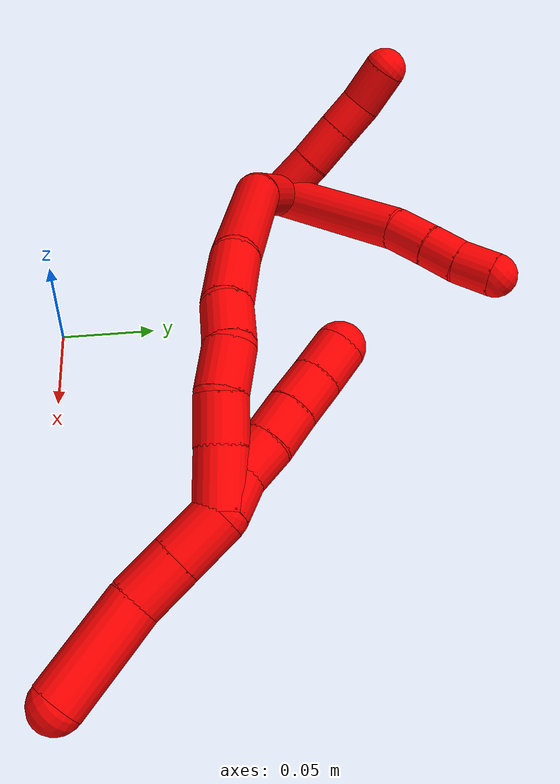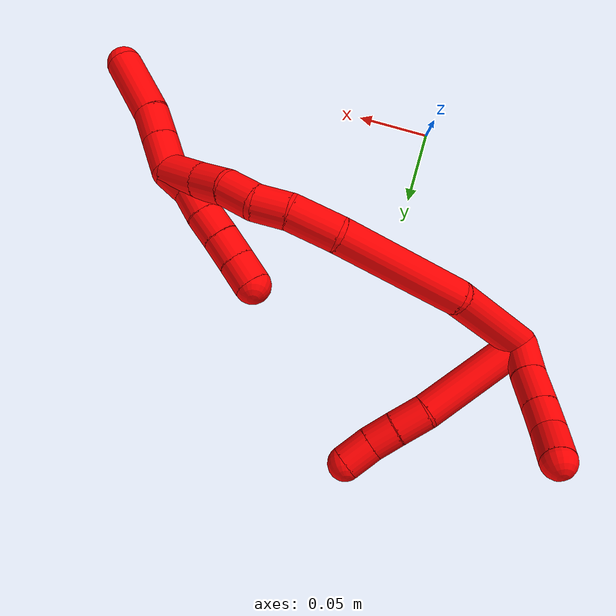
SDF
<sdf version="1.7">
 <world name="default">
  <model name="2">
   <static>0</static>
   <link name="2">
    <collision name="collision-cylinder-e_1_2_8">
     <pose>0.035642 0.010041 0.019271 -0.480354 1.0233 -0.273328</pose>
     <geometry><cylinder><radius>0.0125</radius><length>0.083488</length></cylinder></geometry>
     <surface>
      <friction><ode><mu>1.16</mu><mu2>1.16</mu2><slip1>0</slip1><slip2>0</slip2></ode></friction>
      <contact><ode><kp>1e+06</kp><kd>1</kd><max_vel>0</max_vel><min_depth>0.001</min_depth></ode></contact>
     </surface>
    </collision>
    <visual name="visual-cylinder-e_1_2_8">
     <pose>0.035642 0.010041 0.019271 -0.480354 1.0233 -0.273328</pose>
     <geometry><cylinder><radius>0.0125</radius><length>0.083488</length></cylinder></geometry>
     <material><ambient>1 0 0 1</ambient></material>
    </visual>
    <collision name="collision-cylinder-e_2_8_9">
     <pose>0.082021 0.023844 0.042297 -0.786149 1.11104 -0.503837</pose>
     <geometry><cylinder><radius>0.0125</radius><length>0.02396</length></cylinder></geometry>
     <surface>
      <friction><ode><mu>1.16</mu><mu2>1.16</mu2><slip1>0</slip1><slip2>0</slip2></ode></friction>
      <contact><ode><kp>1e+06</kp><kd>1</kd><max_vel>0</max_vel><min_depth>0.001</min_depth></ode></contact>
     </surface>
    </collision>
    <visual name="visual-cylinder-e_2_8_9">
     <pose>0.082021 0.023844 0.042297 -0.786149 1.11104 -0.503837</pose>
     <geometry><cylinder><radius>0.0125</radius><length>0.02396</length></cylinder></geometry>
     <material><ambient>1 0 0 1</ambient></material>
    </visual>
    <collision name="collision-cylinder-e_3_9_10">
     <pose>0.101707 0.031346 0.049051 -0.89509 1.0791 -0.559813</pose>
     <geometry><cylinder><radius>0.0125</radius><length>0.020305</length></cylinder></geometry>
     <surface>
      <friction><ode><mu>1.16</mu><mu2>1.16</mu2><slip1>0</slip1><slip2>0</slip2></ode></friction>
      <contact><ode><kp>1e+06</kp><kd>1</kd><max_vel>0</max_vel><min_depth>0.001</min_depth></ode></contact>
     </surface>
    </collision>
    <visual name="visual-cylinder-e_3_9_10">
     <pose>0.101707 0.031346 0.049051 -0.89509 1.0791 -0.559813</pose>
     <geometry><cylinder><radius>0.0125</radius><length>0.020305</length></cylinder></geometry>
     <material><ambient>1 0 0 1</ambient></material>
    </visual>
    <collision name="collision-cylinder-e_4_10_6">
     <pose>0.119993 0.038898 0.056742 -0.682166 0.996107 -0.381344</pose>
     <geometry><cylinder><radius>0.0125</radius><length>0.022247</length></cylinder></geometry>
     <surface>
      <friction><ode><mu>1.16</mu><mu2>1.16</mu2><slip1>0</slip1><slip2>0</slip2></ode></friction>
      <contact><ode><kp>1e+06</kp><kd>1</kd><max_vel>0</max_vel><min_depth>0.001</min_depth></ode></contact>
     </surface>
    </collision>
    <visual name="visual-cylinder-e_4_10_6">
     <pose>0.119993 0.038898 0.056742 -0.682166 0.996107 -0.381344</pose>
     <geometry><cylinder><radius>0.0125</radius><length>0.022247</length></cylinder></geometry>
     <material><ambient>1 0 0 1</ambient></material>
    </visual>
    <collision name="collision-cylinder-e_1_2_11">
     <pose>-9.8e-05 -7.7e-05 0.014039 0.005454 -0.00696 -1.9e-05</pose>
     <geometry><cylinder><radius>0.0125</radius><length>0.02808</length></cylinder></geometry>
     <surface>
      <friction><ode><mu>1.16</mu><mu2>1.16</mu2><slip1>0</slip1><slip2>0</slip2></ode></friction>
      <contact><ode><kp>1e+06</kp><kd>1</kd><max_vel>0</max_vel><min_depth>0.001</min_depth></ode></contact>
     </surface>
    </collision>
    <visual name="visual-cylinder-e_1_2_11">
     <pose>-9.8e-05 -7.7e-05 0.014039 0.005454 -0.00696 -1.9e-05</pose>
     <geometry><cylinder><radius>0.0125</radius><length>0.02808</length></cylinder></geometry>
     <material><ambient>1 0 0 1</ambient></material>
    </visual>
    <collision name="collision-cylinder-e_2_11_12">
     <pose>-0.001152 -0.000393 0.040941 0.018641 -0.074192 -0.000692</pose>
     <geometry><cylinder><radius>0.0125</radius><length>0.025799</length></cylinder></geometry>
     <surface>
      <friction><ode><mu>1.16</mu><mu2>1.16</mu2><slip1>0</slip1><slip2>0</slip2></ode></friction>
      <contact><ode><kp>1e+06</kp><kd>1</kd><max_vel>0</max_vel><min_depth>0.001</min_depth></ode></contact>
     </surface>
    </collision>
    <visual name="visual-cylinder-e_2_11_12">
     <pose>-0.001152 -0.000393 0.040941 0.018641 -0.074192 -0.000692</pose>
     <geometry><cylinder><radius>0.0125</radius><length>0.025799</length></cylinder></geometry>
     <material><ambient>1 0 0 1</ambient></material>
    </visual>
    <collision name="collision-cylinder-e_3_12_13">
     <pose>-0.00271 -0.000815 0.064105 0.017684 -0.058345 -0.000516</pose>
     <geometry><cylinder><radius>0.0125</radius><length>0.020644</length></cylinder></geometry>
     <surface>
      <friction><ode><mu>1.16</mu><mu2>1.16</mu2><slip1>0</slip1><slip2>0</slip2></ode></friction>
      <contact><ode><kp>1e+06</kp><kd>1</kd><max_vel>0</max_vel><min_depth>0.001</min_depth></ode></contact>
     </surface>
    </collision>
    <visual name="visual-cylinder-e_3_12_13">
     <pose>-0.00271 -0.000815 0.064105 0.017684 -0.058345 -0.000516</pose>
     <geometry><cylinder><radius>0.0125</radius><length>0.020644</length></cylinder></geometry>
     <material><ambient>1 0 0 1</ambient></material>
    </visual>
    <collision name="collision-cylinder-e_4_13_5">
     <pose>-0.002767 -0.004084 0.086755 0.244967 0.042765 0.005265</pose>
     <geometry><cylinder><radius>0.0125</radius><length>0.025478</length></cylinder></geometry>
     <surface>
      <friction><ode><mu>1.16</mu><mu2>1.16</mu2><slip1>0</slip1><slip2>0</slip2></ode></friction>
      <contact><ode><kp>1e+06</kp><kd>1</kd><max_vel>0</max_vel><min_depth>0.001</min_depth></ode></contact>
     </surface>
    </collision>
    <visual name="visual-cylinder-e_4_13_5">
     <pose>-0.002767 -0.004084 0.086755 0.244967 0.042765 0.005265</pose>
     <geometry><cylinder><radius>0.0125</radius><length>0.025478</length></cylinder></geometry>
     <material><ambient>1 0 0 1</ambient></material>
    </visual>
    <collision name="collision-cylinder-e_1_2_14">
     <pose>0.024621 -0.02771 0.000413 1.5559 0.726378 0.716536</pose>
     <geometry><cylinder><radius>0.0125</radius><length>0.07414</length></cylinder></geometry>
     <surface>
      <friction><ode><mu>1.16</mu><mu2>1.16</mu2><slip1>0</slip1><slip2>0</slip2></ode></friction>
      <contact><ode><kp>1e+06</kp><kd>1</kd><max_vel>0</max_vel><min_depth>0.001</min_depth></ode></contact>
     </surface>
    </collision>
    <visual name="visual-cylinder-e_1_2_14">
     <pose>0.024621 -0.02771 0.000413 1.5559 0.726378 0.716536</pose>
     <geometry><cylinder><radius>0.0125</radius><length>0.07414</length></cylinder></geometry>
     <material><ambient>1 0 0 1</ambient></material>
    </visual>
    <collision name="collision-cylinder-e_2_14_15">
     <pose>0.087942 -0.079675 -0.007544 1.90308 0.985331 1.29099</pose>
     <geometry><cylinder><radius>0.0125</radius><length>0.092869</length></cylinder></geometry>
     <surface>
      <friction><ode><mu>1.16</mu><mu2>1.16</mu2><slip1>0</slip1><slip2>0</slip2></ode></friction>
      <contact><ode><kp>1e+06</kp><kd>1</kd><max_vel>0</max_vel><min_depth>0.001</min_depth></ode></contact>
     </surface>
    </collision>
    <visual name="visual-cylinder-e_2_14_15">
     <pose>0.087942 -0.079675 -0.007544 1.90308 0.985331 1.29099</pose>
     <geometry><cylinder><radius>0.0125</radius><length>0.092869</length></cylinder></geometry>
     <material><ambient>1 0 0 1</ambient></material>
    </visual>
    <collision name="collision-cylinder-e_3_15_16">
     <pose>0.14162 -0.109233 -0.022196 2.44055 1.06883 2.03486</pose>
     <geometry><cylinder><radius>0.0125</radius><length>0.034167</length></cylinder></geometry>
     <surface>
      <friction><ode><mu>1.16</mu><mu2>1.16</mu2><slip1>0</slip1><slip2>0</slip2></ode></friction>
      <contact><ode><kp>1e+06</kp><kd>1</kd><max_vel>0</max_vel><min_depth>0.001</min_depth></ode></contact>
     </surface>
    </collision>
    <visual name="visual-cylinder-e_3_15_16">
     <pose>0.14162 -0.109233 -0.022196 2.44055 1.06883 2.03486</pose>
     <geometry><cylinder><radius>0.0125</radius><length>0.034167</length></cylinder></geometry>
     <material><ambient>1 0 0 1</ambient></material>
    </visual>
    <collision name="collision-cylinder-e_4_16_17">
     <pose>0.16748 -0.11561 -0.032551 2.88357 1.20139 2.76733</pose>
     <geometry><cylinder><radius>0.0125</radius><length>0.023343</length></cylinder></geometry>
     <surface>
      <friction><ode><mu>1.16</mu><mu2>1.16</mu2><slip1>0</slip1><slip2>0</slip2></ode></friction>
      <contact><ode><kp>1e+06</kp><kd>1</kd><max_vel>0</max_vel><min_depth>0.001</min_depth></ode></contact>
     </surface>
    </collision>
    <visual name="visual-cylinder-e_4_16_17">
     <pose>0.16748 -0.11561 -0.032551 2.88357 1.20139 2.76733</pose>
     <geometry><cylinder><radius>0.0125</radius><length>0.023343</length></cylinder></geometry>
     <material><ambient>1 0 0 1</ambient></material>
    </visual>
    <collision name="collision-cylinder-e_5_17_18">
     <pose>0.187487 -0.117119 -0.04409 3.08353 0.884266 3.01906</pose>
     <geometry><cylinder><radius>0.0125</radius><length>0.023589</length></cylinder></geometry>
     <surface>
      <friction><ode><mu>1.16</mu><mu2>1.16</mu2><slip1>0</slip1><slip2>0</slip2></ode></friction>
      <contact><ode><kp>1e+06</kp><kd>1</kd><max_vel>0</max_vel><min_depth>0.001</min_depth></ode></contact>
     </surface>
    </collision>
    <visual name="visual-cylinder-e_5_17_18">
     <pose>0.187487 -0.117119 -0.04409 3.08353 0.884266 3.01906</pose>
     <geometry><cylinder><radius>0.0125</radius><length>0.023589</length></cylinder></geometry>
     <material><ambient>1 0 0 1</ambient></material>
    </visual>
    <collision name="collision-cylinder-e_6_18_19">
     <pose>0.20551 -0.114914 -0.058699 -2.78776 0.862884 -2.40075</pose>
     <geometry><cylinder><radius>0.0125</radius><length>0.02343</length></cylinder></geometry>
     <surface>
      <friction><ode><mu>1.16</mu><mu2>1.16</mu2><slip1>0</slip1><slip2>0</slip2></ode></friction>
      <contact><ode><kp>1e+06</kp><kd>1</kd><max_vel>0</max_vel><min_depth>0.001</min_depth></ode></contact>
     </surface>
    </collision>
    <visual name="visual-cylinder-e_6_18_19">
     <pose>0.20551 -0.114914 -0.058699 -2.78776 0.862884 -2.40075</pose>
     <geometry><cylinder><radius>0.0125</radius><length>0.02343</length></cylinder></geometry>
     <material><ambient>1 0 0 1</ambient></material>
    </visual>
    <collision name="collision-cylinder-e_7_19_1">
     <pose>0.225586 -0.110061 -0.074371 -2.88761 0.903346 -2.62689</pose>
     <geometry><cylinder><radius>0.0125</radius><length>0.028461</length></cylinder></geometry>
     <surface>
      <friction><ode><mu>1.16</mu><mu2>1.16</mu2><slip1>0</slip1><slip2>0</slip2></ode></friction>
      <contact><ode><kp>1e+06</kp><kd>1</kd><max_vel>0</max_vel><min_depth>0.001</min_depth></ode></contact>
     </surface>
    </collision>
    <visual name="visual-cylinder-e_7_19_1">
     <pose>0.225586 -0.110061 -0.074371 -2.88761 0.903346 -2.62689</pose>
     <geometry><cylinder><radius>0.0125</radius><length>0.028461</length></cylinder></geometry>
     <material><ambient>1 0 0 1</ambient></material>
    </visual>
    <collision name="collision-cylinder-e_1_1_20">
     <pose>0.229862 -0.104548 -0.076456 -0.473454 -0.761652 0.192582</pose>
     <geometry><cylinder><radius>0.0125</radius><length>0.02</length></cylinder></geometry>
     <surface>
      <friction><ode><mu>1.16</mu><mu2>1.16</mu2><slip1>0</slip1><slip2>0</slip2></ode></friction>
      <contact><ode><kp>1e+06</kp><kd>1</kd><max_vel>0</max_vel><min_depth>0.001</min_depth></ode></contact>
     </surface>
    </collision>
    <visual name="visual-cylinder-e_1_1_20">
     <pose>0.229862 -0.104548 -0.076456 -0.473454 -0.761652 0.192582</pose>
     <geometry><cylinder><radius>0.0125</radius><length>0.02</length></cylinder></geometry>
     <material><ambient>1 0 0 1</ambient></material>
    </visual>
    <collision name="collision-cylinder-e_2_20_21">
     <pose>0.218628 -0.097035 -0.062047 -0.486429 -0.448081 0.112959</pose>
     <geometry><cylinder><radius>0.0125</radius><length>0.02</length></cylinder></geometry>
     <surface>
      <friction><ode><mu>1.16</mu><mu2>1.16</mu2><slip1>0</slip1><slip2>0</slip2></ode></friction>
      <contact><ode><kp>1e+06</kp><kd>1</kd><max_vel>0</max_vel><min_depth>0.001</min_depth></ode></contact>
     </surface>
    </collision>
    <visual name="visual-cylinder-e_2_20_21">
     <pose>0.218628 -0.097035 -0.062047 -0.486429 -0.448081 0.112959</pose>
     <geometry><cylinder><radius>0.0125</radius><length>0.02</length></cylinder></geometry>
     <material><ambient>1 0 0 1</ambient></material>
    </visual>
    <collision name="collision-cylinder-e_3_21_22">
     <pose>0.209046 -0.089013 -0.046469 -0.46396 -0.552749 0.133807</pose>
     <geometry><cylinder><radius>0.0125</radius><length>0.02</length></cylinder></geometry>
     <surface>
      <friction><ode><mu>1.16</mu><mu2>1.16</mu2><slip1>0</slip1><slip2>0</slip2></ode></friction>
      <contact><ode><kp>1e+06</kp><kd>1</kd><max_vel>0</max_vel><min_depth>0.001</min_depth></ode></contact>
     </surface>
    </collision>
    <visual name="visual-cylinder-e_3_21_22">
     <pose>0.209046 -0.089013 -0.046469 -0.46396 -0.552749 0.133807</pose>
     <geometry><cylinder><radius>0.0125</radius><length>0.02</length></cylinder></geometry>
     <material><ambient>1 0 0 1</ambient></material>
    </visual>
    <collision name="collision-cylinder-e_4_22_23">
     <pose>0.198771 -0.081162 -0.031215 -0.486488 -0.526376 0.133528</pose>
     <geometry><cylinder><radius>0.0125</radius><length>0.02</length></cylinder></geometry>
     <surface>
      <friction><ode><mu>1.16</mu><mu2>1.16</mu2><slip1>0</slip1><slip2>0</slip2></ode></friction>
      <contact><ode><kp>1e+06</kp><kd>1</kd><max_vel>0</max_vel><min_depth>0.001</min_depth></ode></contact>
     </surface>
    </collision>
    <visual name="visual-cylinder-e_4_22_23">
     <pose>0.198771 -0.081162 -0.031215 -0.486488 -0.526376 0.133528</pose>
     <geometry><cylinder><radius>0.0125</radius><length>0.02</length></cylinder></geometry>
     <material><ambient>1 0 0 1</ambient></material>
    </visual>
    <collision name="collision-cylinder-e_5_23_4">
     <pose>0.188822 -0.07353 -0.015644 -0.425214 -0.515003 0.113575</pose>
     <geometry><cylinder><radius>0.0125</radius><length>0.02</length></cylinder></geometry>
     <surface>
      <friction><ode><mu>1.16</mu><mu2>1.16</mu2><slip1>0</slip1><slip2>0</slip2></ode></friction>
      <contact><ode><kp>1e+06</kp><kd>1</kd><max_vel>0</max_vel><min_depth>0.001</min_depth></ode></contact>
     </surface>
    </collision>
    <visual name="visual-cylinder-e_5_23_4">
     <pose>0.188822 -0.07353 -0.015644 -0.425214 -0.515003 0.113575</pose>
     <geometry><cylinder><radius>0.0125</radius><length>0.02</length></cylinder></geometry>
     <material><ambient>1 0 0 1</ambient></material>
    </visual>
    <collision name="collision-cylinder-e_1_1_24">
     <pose>0.240242 -0.11172 -0.094847 2.82824 0.270147 1.42089</pose>
     <geometry><cylinder><radius>0.0125</radius><length>0.02607</length></cylinder></geometry>
     <surface>
      <friction><ode><mu>1.16</mu><mu2>1.16</mu2><slip1>0</slip1><slip2>0</slip2></ode></friction>
      <contact><ode><kp>1e+06</kp><kd>1</kd><max_vel>0</max_vel><min_depth>0.001</min_depth></ode></contact>
     </surface>
    </collision>
    <visual name="visual-cylinder-e_1_1_24">
     <pose>0.240242 -0.11172 -0.094847 2.82824 0.270147 1.42089</pose>
     <geometry><cylinder><radius>0.0125</radius><length>0.02607</length></cylinder></geometry>
     <material><ambient>1 0 0 1</ambient></material>
    </visual>
    <collision name="collision-cylinder-e_2_24_25">
     <pose>0.24697 -0.119233 -0.117856 2.82355 0.272153 1.41336</pose>
     <geometry><cylinder><radius>0.0125</radius><length>0.024173</length></cylinder></geometry>
     <surface>
      <friction><ode><mu>1.16</mu><mu2>1.16</mu2><slip1>0</slip1><slip2>0</slip2></ode></friction>
      <contact><ode><kp>1e+06</kp><kd>1</kd><max_vel>0</max_vel><min_depth>0.001</min_depth></ode></contact>
     </surface>
    </collision>
    <visual name="visual-cylinder-e_2_24_25">
     <pose>0.24697 -0.119233 -0.117856 2.82355 0.272153 1.41336</pose>
     <geometry><cylinder><radius>0.0125</radius><length>0.024173</length></cylinder></geometry>
     <material><ambient>1 0 0 1</ambient></material>
    </visual>
    <collision name="collision-cylinder-e_3_25_3">
     <pose>0.260541 -0.129564 -0.150538 2.84154 0.427843 1.92577</pose>
     <geometry><cylinder><radius>0.0125</radius><length>0.049757</length></cylinder></geometry>
     <surface>
      <friction><ode><mu>1.16</mu><mu2>1.16</mu2><slip1>0</slip1><slip2>0</slip2></ode></friction>
      <contact><ode><kp>1e+06</kp><kd>1</kd><max_vel>0</max_vel><min_depth>0.001</min_depth></ode></contact>
     </surface>
    </collision>
    <visual name="visual-cylinder-e_3_25_3">
     <pose>0.260541 -0.129564 -0.150538 2.84154 0.427843 1.92577</pose>
     <geometry><cylinder><radius>0.0125</radius><length>0.049757</length></cylinder></geometry>
     <material><ambient>1 0 0 1</ambient></material>
    </visual>
    <collision name="collision-sphere-3">
     <pose>0.270863 -0.136254 -0.172163 0 -0 0</pose>
     <geometry><sphere><radius>0.0125</radius></sphere></geometry>
     <surface>
      <friction><ode><mu>1.16</mu><mu2>1.16</mu2><slip1>0</slip1><slip2>0</slip2></ode></friction>
      <contact><ode><kp>1e+06</kp><kd>1</kd><max_vel>0</max_vel><min_depth>0.001</min_depth></ode></contact>
     </surface>
    </collision>
    <visual name="visual-sphere-3">
     <pose>0.270863 -0.136254 -0.172163 0 -0 0</pose>
     <geometry><sphere><radius>0.0125</radius></sphere></geometry>
     <material><ambient>1 0 0 1</ambient></material>
    </visual>
    <collision name="collision-sphere-25">
     <pose>0.250218 -0.122873 -0.128914 0 -0 0</pose>
     <geometry><sphere><radius>0.0125</radius></sphere></geometry>
     <surface>
      <friction><ode><mu>1.16</mu><mu2>1.16</mu2><slip1>0</slip1><slip2>0</slip2></ode></friction>
      <contact><ode><kp>1e+06</kp><kd>1</kd><max_vel>0</max_vel><min_depth>0.001</min_depth></ode></contact>
     </surface>
    </collision>
    <visual name="visual-sphere-25">
     <pose>0.250218 -0.122873 -0.128914 0 -0 0</pose>
     <geometry><sphere><radius>0.0125</radius></sphere></geometry>
     <material><ambient>1 0 0 1</ambient></material>
    </visual>
    <collision name="collision-sphere-24">
     <pose>0.243721 -0.115592 -0.106798 0 -0 0</pose>
     <geometry><sphere><radius>0.0125</radius></sphere></geometry>
     <surface>
      <friction><ode><mu>1.16</mu><mu2>1.16</mu2><slip1>0</slip1><slip2>0</slip2></ode></friction>
      <contact><ode><kp>1e+06</kp><kd>1</kd><max_vel>0</max_vel><min_depth>0.001</min_depth></ode></contact>
     </surface>
    </collision>
    <visual name="visual-sphere-24">
     <pose>0.243721 -0.115592 -0.106798 0 -0 0</pose>
     <geometry><sphere><radius>0.0125</radius></sphere></geometry>
     <material><ambient>1 0 0 1</ambient></material>
    </visual>
    <collision name="collision-sphere-4">
     <pose>0.183897 -0.06994 -0.007716 0 -0 0</pose>
     <geometry><sphere><radius>0.0125</radius></sphere></geometry>
     <surface>
      <friction><ode><mu>1.16</mu><mu2>1.16</mu2><slip1>0</slip1><slip2>0</slip2></ode></friction>
      <contact><ode><kp>1e+06</kp><kd>1</kd><max_vel>0</max_vel><min_depth>0.001</min_depth></ode></contact>
     </surface>
    </collision>
    <visual name="visual-sphere-4">
     <pose>0.183897 -0.06994 -0.007716 0 -0 0</pose>
     <geometry><sphere><radius>0.0125</radius></sphere></geometry>
     <material><ambient>1 0 0 1</ambient></material>
    </visual>
    <collision name="collision-sphere-23">
     <pose>0.193747 -0.07712 -0.023571 0 -0 0</pose>
     <geometry><sphere><radius>0.0125</radius></sphere></geometry>
     <surface>
      <friction><ode><mu>1.16</mu><mu2>1.16</mu2><slip1>0</slip1><slip2>0</slip2></ode></friction>
      <contact><ode><kp>1e+06</kp><kd>1</kd><max_vel>0</max_vel><min_depth>0.001</min_depth></ode></contact>
     </surface>
    </collision>
    <visual name="visual-sphere-23">
     <pose>0.193747 -0.07712 -0.023571 0 -0 0</pose>
     <geometry><sphere><radius>0.0125</radius></sphere></geometry>
     <material><ambient>1 0 0 1</ambient></material>
    </visual>
    <collision name="collision-sphere-22">
     <pose>0.203796 -0.085205 -0.038858 0 -0 0</pose>
     <geometry><sphere><radius>0.0125</radius></sphere></geometry>
     <surface>
      <friction><ode><mu>1.16</mu><mu2>1.16</mu2><slip1>0</slip1><slip2>0</slip2></ode></friction>
      <contact><ode><kp>1e+06</kp><kd>1</kd><max_vel>0</max_vel><min_depth>0.001</min_depth></ode></contact>
     </surface>
    </collision>
    <visual name="visual-sphere-22">
     <pose>0.203796 -0.085205 -0.038858 0 -0 0</pose>
     <geometry><sphere><radius>0.0125</radius></sphere></geometry>
     <material><ambient>1 0 0 1</ambient></material>
    </visual>
    <collision name="collision-sphere-21">
     <pose>0.214296 -0.092822 -0.05408 0 -0 0</pose>
     <geometry><sphere><radius>0.0125</radius></sphere></geometry>
     <surface>
      <friction><ode><mu>1.16</mu><mu2>1.16</mu2><slip1>0</slip1><slip2>0</slip2></ode></friction>
      <contact><ode><kp>1e+06</kp><kd>1</kd><max_vel>0</max_vel><min_depth>0.001</min_depth></ode></contact>
     </surface>
    </collision>
    <visual name="visual-sphere-21">
     <pose>0.214296 -0.092822 -0.05408 0 -0 0</pose>
     <geometry><sphere><radius>0.0125</radius></sphere></geometry>
     <material><ambient>1 0 0 1</ambient></material>
    </visual>
    <collision name="collision-sphere-20">
     <pose>0.222961 -0.101248 -0.070015 0 -0 0</pose>
     <geometry><sphere><radius>0.0125</radius></sphere></geometry>
     <surface>
      <friction><ode><mu>1.16</mu><mu2>1.16</mu2><slip1>0</slip1><slip2>0</slip2></ode></friction>
      <contact><ode><kp>1e+06</kp><kd>1</kd><max_vel>0</max_vel><min_depth>0.001</min_depth></ode></contact>
     </surface>
    </collision>
    <visual name="visual-sphere-20">
     <pose>0.222961 -0.101248 -0.070015 0 -0 0</pose>
     <geometry><sphere><radius>0.0125</radius></sphere></geometry>
     <material><ambient>1 0 0 1</ambient></material>
    </visual>
    <collision name="collision-sphere-11">
     <pose>-0.000195 -0.000153 0.028079 0 -0 0</pose>
     <geometry><sphere><radius>0.0125</radius></sphere></geometry>
     <surface>
      <friction><ode><mu>1.16</mu><mu2>1.16</mu2><slip1>0</slip1><slip2>0</slip2></ode></friction>
      <contact><ode><kp>1e+06</kp><kd>1</kd><max_vel>0</max_vel><min_depth>0.001</min_depth></ode></contact>
     </surface>
    </collision>
    <visual name="visual-sphere-11">
     <pose>-0.000195 -0.000153 0.028079 0 -0 0</pose>
     <geometry><sphere><radius>0.0125</radius></sphere></geometry>
     <material><ambient>1 0 0 1</ambient></material>
    </visual>
    <collision name="collision-sphere-6">
     <pose>0.12933 0.04271 0.061436 0 -0 0</pose>
     <geometry><sphere><radius>0.0125</radius></sphere></geometry>
     <surface>
      <friction><ode><mu>1.16</mu><mu2>1.16</mu2><slip1>0</slip1><slip2>0</slip2></ode></friction>
      <contact><ode><kp>1e+06</kp><kd>1</kd><max_vel>0</max_vel><min_depth>0.001</min_depth></ode></contact>
     </surface>
    </collision>
    <visual name="visual-sphere-6">
     <pose>0.12933 0.04271 0.061436 0 -0 0</pose>
     <geometry><sphere><radius>0.0125</radius></sphere></geometry>
     <material><ambient>1 0 0 1</ambient></material>
    </visual>
    <collision name="collision-sphere-10">
     <pose>0.110656 0.035086 0.052049 0 -0 0</pose>
     <geometry><sphere><radius>0.0125</radius></sphere></geometry>
     <surface>
      <friction><ode><mu>1.16</mu><mu2>1.16</mu2><slip1>0</slip1><slip2>0</slip2></ode></friction>
      <contact><ode><kp>1e+06</kp><kd>1</kd><max_vel>0</max_vel><min_depth>0.001</min_depth></ode></contact>
     </surface>
    </collision>
    <visual name="visual-sphere-10">
     <pose>0.110656 0.035086 0.052049 0 -0 0</pose>
     <geometry><sphere><radius>0.0125</radius></sphere></geometry>
     <material><ambient>1 0 0 1</ambient></material>
    </visual>
    <collision name="collision-sphere-9">
     <pose>0.092757 0.027606 0.046053 0 -0 0</pose>
     <geometry><sphere><radius>0.0125</radius></sphere></geometry>
     <surface>
      <friction><ode><mu>1.16</mu><mu2>1.16</mu2><slip1>0</slip1><slip2>0</slip2></ode></friction>
      <contact><ode><kp>1e+06</kp><kd>1</kd><max_vel>0</max_vel><min_depth>0.001</min_depth></ode></contact>
     </surface>
    </collision>
    <visual name="visual-sphere-9">
     <pose>0.092757 0.027606 0.046053 0 -0 0</pose>
     <geometry><sphere><radius>0.0125</radius></sphere></geometry>
     <material><ambient>1 0 0 1</ambient></material>
    </visual>
    <collision name="collision-sphere-2">
     <geometry><sphere><radius>0.0125</radius></sphere></geometry>
     <surface>
      <friction><ode><mu>1.16</mu><mu2>1.16</mu2><slip1>0</slip1><slip2>0</slip2></ode></friction>
      <contact><ode><kp>1e+06</kp><kd>1</kd><max_vel>0</max_vel><min_depth>0.001</min_depth></ode></contact>
     </surface>
    </collision>
    <visual name="visual-sphere-2">
     <geometry><sphere><radius>0.0125</radius></sphere></geometry>
     <material><ambient>1 0 0 1</ambient></material>
    </visual>
    <collision name="collision-sphere-19">
     <pose>0.21441 -0.112274 -0.065845 0 -0 0</pose>
     <geometry><sphere><radius>0.0125</radius></sphere></geometry>
     <surface>
      <friction><ode><mu>1.16</mu><mu2>1.16</mu2><slip1>0</slip1><slip2>0</slip2></ode></friction>
      <contact><ode><kp>1e+06</kp><kd>1</kd><max_vel>0</max_vel><min_depth>0.001</min_depth></ode></contact>
     </surface>
    </collision>
    <visual name="visual-sphere-19">
     <pose>0.21441 -0.112274 -0.065845 0 -0 0</pose>
     <geometry><sphere><radius>0.0125</radius></sphere></geometry>
     <material><ambient>1 0 0 1</ambient></material>
    </visual>
    <collision name="collision-sphere-8">
     <pose>0.071285 0.020082 0.038541 0 -0 0</pose>
     <geometry><sphere><radius>0.0125</radius></sphere></geometry>
     <surface>
      <friction><ode><mu>1.16</mu><mu2>1.16</mu2><slip1>0</slip1><slip2>0</slip2></ode></friction>
      <contact><ode><kp>1e+06</kp><kd>1</kd><max_vel>0</max_vel><min_depth>0.001</min_depth></ode></contact>
     </surface>
    </collision>
    <visual name="visual-sphere-8">
     <pose>0.071285 0.020082 0.038541 0 -0 0</pose>
     <geometry><sphere><radius>0.0125</radius></sphere></geometry>
     <material><ambient>1 0 0 1</ambient></material>
    </visual>
    <collision name="collision-sphere-12">
     <pose>-0.002108 -0.000633 0.053802 0 -0 0</pose>
     <geometry><sphere><radius>0.0125</radius></sphere></geometry>
     <surface>
      <friction><ode><mu>1.16</mu><mu2>1.16</mu2><slip1>0</slip1><slip2>0</slip2></ode></friction>
      <contact><ode><kp>1e+06</kp><kd>1</kd><max_vel>0</max_vel><min_depth>0.001</min_depth></ode></contact>
     </surface>
    </collision>
    <visual name="visual-sphere-12">
     <pose>-0.002108 -0.000633 0.053802 0 -0 0</pose>
     <geometry><sphere><radius>0.0125</radius></sphere></geometry>
     <material><ambient>1 0 0 1</ambient></material>
    </visual>
    <collision name="collision-sphere-13">
     <pose>-0.003312 -0.000997 0.074408 0 -0 0</pose>
     <geometry><sphere><radius>0.0125</radius></sphere></geometry>
     <surface>
      <friction><ode><mu>1.16</mu><mu2>1.16</mu2><slip1>0</slip1><slip2>0</slip2></ode></friction>
      <contact><ode><kp>1e+06</kp><kd>1</kd><max_vel>0</max_vel><min_depth>0.001</min_depth></ode></contact>
     </surface>
    </collision>
    <visual name="visual-sphere-13">
     <pose>-0.003312 -0.000997 0.074408 0 -0 0</pose>
     <geometry><sphere><radius>0.0125</radius></sphere></geometry>
     <material><ambient>1 0 0 1</ambient></material>
    </visual>
    <collision name="collision-sphere-5">
     <pose>-0.002222 -0.00717 0.099102 0 -0 0</pose>
     <geometry><sphere><radius>0.0125</radius></sphere></geometry>
     <surface>
      <friction><ode><mu>1.16</mu><mu2>1.16</mu2><slip1>0</slip1><slip2>0</slip2></ode></friction>
      <contact><ode><kp>1e+06</kp><kd>1</kd><max_vel>0</max_vel><min_depth>0.001</min_depth></ode></contact>
     </surface>
    </collision>
    <visual name="visual-sphere-5">
     <pose>-0.002222 -0.00717 0.099102 0 -0 0</pose>
     <geometry><sphere><radius>0.0125</radius></sphere></geometry>
     <material><ambient>1 0 0 1</ambient></material>
    </visual>
    <collision name="collision-sphere-14">
     <pose>0.049241 -0.05542 0.000826 0 -0 0</pose>
     <geometry><sphere><radius>0.0125</radius></sphere></geometry>
     <surface>
      <friction><ode><mu>1.16</mu><mu2>1.16</mu2><slip1>0</slip1><slip2>0</slip2></ode></friction>
      <contact><ode><kp>1e+06</kp><kd>1</kd><max_vel>0</max_vel><min_depth>0.001</min_depth></ode></contact>
     </surface>
    </collision>
    <visual name="visual-sphere-14">
     <pose>0.049241 -0.05542 0.000826 0 -0 0</pose>
     <geometry><sphere><radius>0.0125</radius></sphere></geometry>
     <material><ambient>1 0 0 1</ambient></material>
    </visual>
    <collision name="collision-sphere-15">
     <pose>0.126644 -0.103931 -0.015914 0 -0 0</pose>
     <geometry><sphere><radius>0.0125</radius></sphere></geometry>
     <surface>
      <friction><ode><mu>1.16</mu><mu2>1.16</mu2><slip1>0</slip1><slip2>0</slip2></ode></friction>
      <contact><ode><kp>1e+06</kp><kd>1</kd><max_vel>0</max_vel><min_depth>0.001</min_depth></ode></contact>
     </surface>
    </collision>
    <visual name="visual-sphere-15">
     <pose>0.126644 -0.103931 -0.015914 0 -0 0</pose>
     <geometry><sphere><radius>0.0125</radius></sphere></geometry>
     <material><ambient>1 0 0 1</ambient></material>
    </visual>
    <collision name="collision-sphere-16">
     <pose>0.156596 -0.114535 -0.028477 0 -0 0</pose>
     <geometry><sphere><radius>0.0125</radius></sphere></geometry>
     <surface>
      <friction><ode><mu>1.16</mu><mu2>1.16</mu2><slip1>0</slip1><slip2>0</slip2></ode></friction>
      <contact><ode><kp>1e+06</kp><kd>1</kd><max_vel>0</max_vel><min_depth>0.001</min_depth></ode></contact>
     </surface>
    </collision>
    <visual name="visual-sphere-16">
     <pose>0.156596 -0.114535 -0.028477 0 -0 0</pose>
     <geometry><sphere><radius>0.0125</radius></sphere></geometry>
     <material><ambient>1 0 0 1</ambient></material>
    </visual>
    <collision name="collision-sphere-17">
     <pose>0.178364 -0.116685 -0.036626 0 -0 0</pose>
     <geometry><sphere><radius>0.0125</radius></sphere></geometry>
     <surface>
      <friction><ode><mu>1.16</mu><mu2>1.16</mu2><slip1>0</slip1><slip2>0</slip2></ode></friction>
      <contact><ode><kp>1e+06</kp><kd>1</kd><max_vel>0</max_vel><min_depth>0.001</min_depth></ode></contact>
     </surface>
    </collision>
    <visual name="visual-sphere-17">
     <pose>0.178364 -0.116685 -0.036626 0 -0 0</pose>
     <geometry><sphere><radius>0.0125</radius></sphere></geometry>
     <material><ambient>1 0 0 1</ambient></material>
    </visual>
    <collision name="collision-sphere-18">
     <pose>0.196609 -0.117553 -0.051553 0 -0 0</pose>
     <geometry><sphere><radius>0.0125</radius></sphere></geometry>
     <surface>
      <friction><ode><mu>1.16</mu><mu2>1.16</mu2><slip1>0</slip1><slip2>0</slip2></ode></friction>
      <contact><ode><kp>1e+06</kp><kd>1</kd><max_vel>0</max_vel><min_depth>0.001</min_depth></ode></contact>
     </surface>
    </collision>
    <visual name="visual-sphere-18">
     <pose>0.196609 -0.117553 -0.051553 0 -0 0</pose>
     <geometry><sphere><radius>0.0125</radius></sphere></geometry>
     <material><ambient>1 0 0 1</ambient></material>
    </visual>
    <collision name="collision-sphere-1">
     <pose>0.236763 -0.107848 -0.082897 0 -0 0</pose>
     <geometry><sphere><radius>0.0125</radius></sphere></geometry>
     <surface>
      <friction><ode><mu>1.16</mu><mu2>1.16</mu2><slip1>0</slip1><slip2>0</slip2></ode></friction>
      <contact><ode><kp>1e+06</kp><kd>1</kd><max_vel>0</max_vel><min_depth>0.001</min_depth></ode></contact>
     </surface>
    </collision>
    <visual name="visual-sphere-1">
     <pose>0.236763 -0.107848 -0.082897 0 -0 0</pose>
     <geometry><sphere><radius>0.0125</radius></sphere></geometry>
     <material><ambient>1 0 0 1</ambient></material>
    </visual>
    <inertial>
     <pose>0.12002 -0.057122 -0.019072 0 -0 0</pose>
     <mass>0.75</mass>
     <inertia>
      <ixx>0.000157</ixx>
      <ixy>0</ixy>
      <ixz>0</ixz>
      <iyy>0.00021</iyy>
      <iyz>0</iyz>
      <izz>-8.7e-05</izz>
     </inertia>
    </inertial>
   </link>
   <pose>-0.102428 0.129579 0.011476 -0.875103 -0.021283 0.331224</pose>
  </model>
 </world>
</sdf>
